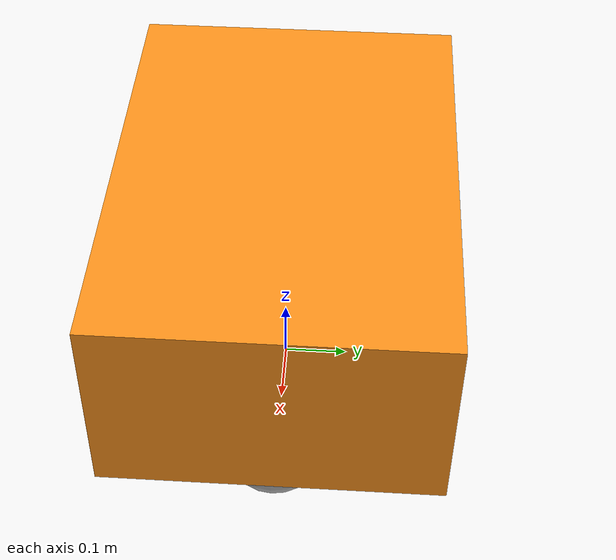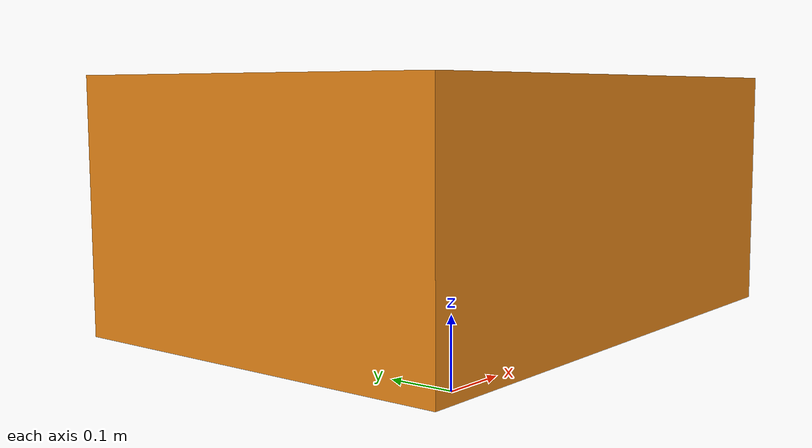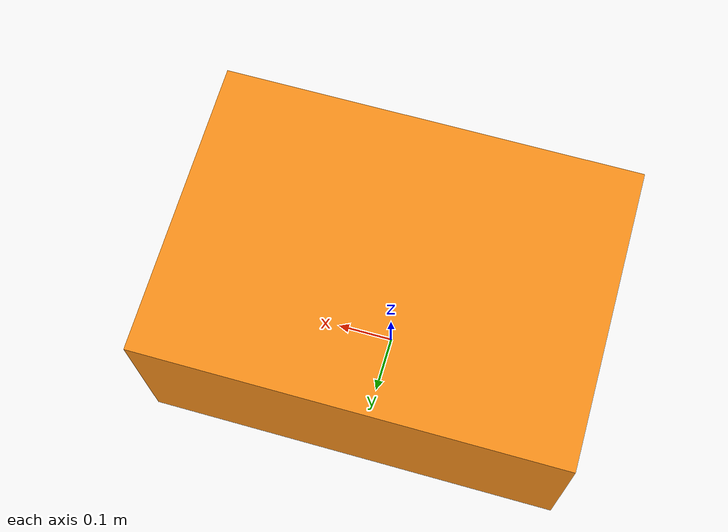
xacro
<?xml version="1.0"?>
<robot xmlns:xacro="http://www.ros.org/wiki/xacro">
    <xacro:property name="base_length" value="0.7" />
    <xacro:property name="base_width" value="0.5" />
    <xacro:property name="base_height" value="0.3" />
    <xacro:property name="caster_radius" value="0.08" />

    <link name="base_link">
        <inertial>
            <origin xyz="0.08 0 0.17" rpy="0 0 0" />
            <mass value="10" />
            <inertia ixx="0.283333" ixy="0" ixz="0" iyy="0.483333" iyz="0" izz="0.616667" />
        </inertial>
        <visual>
            <geometry>
                <box size="${base_length} ${base_width} ${base_height}" />
            </geometry>
            <origin xyz="0 0 0.25" rpy="0 0 0" />
            <material name="orange" />
        </visual>
        <collision>
            <geometry>
                <box size="${base_length} ${base_width} ${base_height}" />
            </geometry>
            <origin xyz="0 0 0.25" rpy="0 0 0" />
        </collision>
        <collision name="impact_bumper">
            <geometry>
                <box size="0.8 0.6 0.15" />
            </geometry>
            <origin xyz="0 0 0.475" rpy="0 0 0" />
        </collision>
    </link>

    <link name="front_caster">
        <inertial>
            <origin xyz="0 0 0" rpy="0 0 0" />
            <mass value="0.5" />
            <inertia ixx="0.00128" ixy="0" ixz="0" iyy="0.00128" iyz="0" izz="0.00128" />
        </inertial>
        <visual>
            <geometry>
                <sphere radius="${caster_radius}" />
            </geometry>
            <origin xyz="0 0 0" rpy="0 0 0" />
            <material name="gray" />
        </visual>
        <collision>
            <geometry>
                <sphere radius="${caster_radius}" />
            </geometry>
            <origin xyz="0 0 0" rpy="0 0 0" />
        </collision>
    </link>

    <joint name="front_caster_joint" type="fixed">
        <origin xyz="0.25 0 ${caster_radius}" rpy="0 0 0" />
        <parent link="base_link" />
        <child link="front_caster" />
    </joint>

    <gazebo reference="front_caster">
        <mu1>0.05</mu1>
        <mu2>0.05</mu2>
    </gazebo>
</robot>
